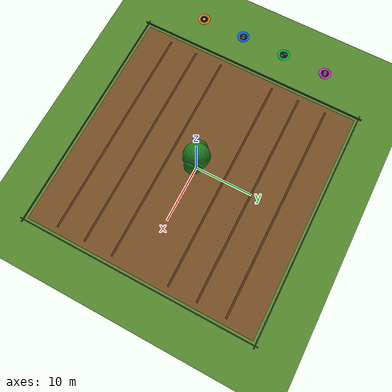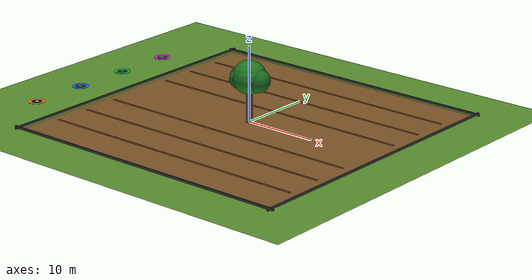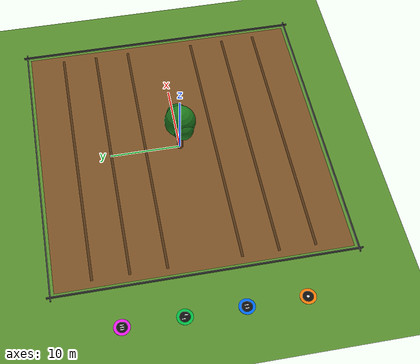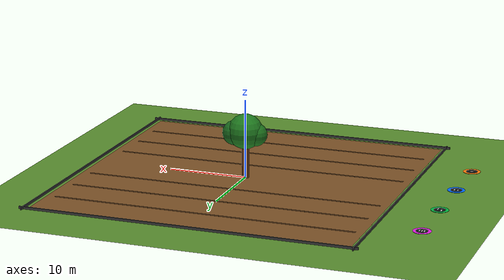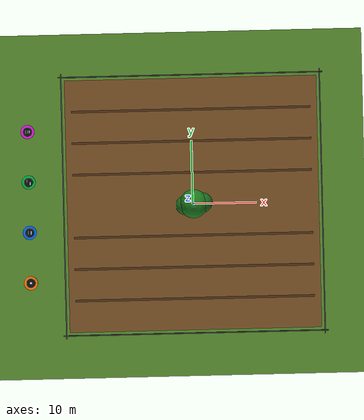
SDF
<?xml version="1.0" encoding="UTF-8"?>
<sdf version="1.9">
  <world name="swarm_field">

    <physics type="ode">
      <max_step_size>0.004</max_step_size>
      <real_time_factor>1.0</real_time_factor>
      <real_time_update_rate>250</real_time_update_rate>
    </physics>
    <gravity>0 0 -9.8</gravity>
    <magnetic_field>6e-06 2.3e-05 -4.2e-05</magnetic_field>
    <atmosphere type="adiabatic"/>

    <scene>
      <sky>
        <clouds>
          <speed>4</speed>
        </clouds>
      </sky>
      <grid>false</grid>
      <ambient>0.62 0.62 0.56 1</ambient>
      <background>0.54 0.78 0.93 1</background>
      <shadows>true</shadows>
    </scene>

    <light name="sun" type="directional">
      <pose>0 0 500 0 0 0</pose>
      <cast_shadows>true</cast_shadows>
      <intensity>1</intensity>
      <direction>-0.45 0.35 -0.82</direction>
      <diffuse>0.95 0.90 0.80 1</diffuse>
      <specular>0.30 0.28 0.24 1</specular>
      <attenuation>
        <range>2000</range>
        <linear>0</linear>
        <constant>1</constant>
        <quadratic>0</quadratic>
      </attenuation>
      <spot>
        <inner_angle>0</inner_angle>
        <outer_angle>0</outer_angle>
        <falloff>0</falloff>
      </spot>
    </light>

    <light name="sky_fill" type="directional">
      <cast_shadows>false</cast_shadows>
      <pose>0 0 100 0 0 0</pose>
      <direction>0 0 -1</direction>
      <diffuse>0.34 0.44 0.54 1</diffuse>
      <specular>0.05 0.05 0.05 1</specular>
      <attenuation>
        <range>2000</range>
        <constant>1</constant>
        <linear>0</linear>
        <quadratic>0</quadratic>
      </attenuation>
    </light>

    <model name="grass_ground">
      <static>true</static>
      <pose>0 0 0 0 0 0</pose>
      <link name="link">
        <collision name="collision">
          <geometry>
            <plane>
              <normal>0 0 1</normal>
              <size>1 1</size>
            </plane>
          </geometry>
          <surface>
            <friction>
              <ode>
                <mu>0.8</mu>
                <mu2>0.8</mu2>
              </ode>
            </friction>
            <contact>
              <collide_bitmask>65535</collide_bitmask>
            </contact>
          </surface>
        </collision>
        <visual name="visual">
          <cast_shadows>false</cast_shadows>
          <geometry>
            <plane>
              <normal>0 0 1</normal>
              <size>300 300</size>
            </plane>
          </geometry>
          <material>
            <ambient>0.24 0.42 0.13 1</ambient>
            <diffuse>0.34 0.55 0.18 1</diffuse>
            <specular>0.02 0.03 0.01 1</specular>
          </material>
        </visual>
      </link>
    </model>

    <model name="field_soil_40x40">
      <static>true</static>
      <pose>0 0 0.006 0 0 0</pose>
      <link name="link">
        <collision name="collision">
          <geometry>
            <box>
              <size>40 40 0.02</size>
            </box>
          </geometry>
          <surface>
            <friction>
              <ode>
                <mu>1.0</mu>
                <mu2>1.0</mu2>
              </ode>
            </friction>
            <contact>
              <collide_bitmask>65535</collide_bitmask>
            </contact>
          </surface>
        </collision>
        <visual name="soil">
          <cast_shadows>false</cast_shadows>
          <pose>0 0 0.011 0 0 0</pose>
          <geometry>
            <box>
              <size>40 40 0.001</size>
            </box>
          </geometry>
          <material>
            <ambient>0.36 0.24 0.11 1</ambient>
            <diffuse>0.48 0.32 0.15 1</diffuse>
            <specular>0.02 0.01 0.01 1</specular>
          </material>
        </visual>
        <visual name="row_0">
          <pose>0 -15 0.014 0 0 0</pose>
          <geometry><box><size>38 0.35 0.001</size></box></geometry>
          <material><ambient>0.24 0.14 0.06 1</ambient><diffuse>0.32 0.20 0.08 1</diffuse></material>
        </visual>
        <visual name="row_1">
          <pose>0 -10 0.014 0 0 0</pose>
          <geometry><box><size>38 0.35 0.001</size></box></geometry>
          <material><ambient>0.24 0.14 0.06 1</ambient><diffuse>0.32 0.20 0.08 1</diffuse></material>
        </visual>
        <visual name="row_2">
          <pose>0 -5 0.014 0 0 0</pose>
          <geometry><box><size>38 0.35 0.001</size></box></geometry>
          <material><ambient>0.24 0.14 0.06 1</ambient><diffuse>0.32 0.20 0.08 1</diffuse></material>
        </visual>
        <visual name="row_3">
          <pose>0 5 0.014 0 0 0</pose>
          <geometry><box><size>38 0.35 0.001</size></box></geometry>
          <material><ambient>0.24 0.14 0.06 1</ambient><diffuse>0.32 0.20 0.08 1</diffuse></material>
        </visual>
        <visual name="row_4">
          <pose>0 10 0.014 0 0 0</pose>
          <geometry><box><size>38 0.35 0.001</size></box></geometry>
          <material><ambient>0.24 0.14 0.06 1</ambient><diffuse>0.32 0.20 0.08 1</diffuse></material>
        </visual>
        <visual name="row_5">
          <pose>0 15 0.014 0 0 0</pose>
          <geometry><box><size>38 0.35 0.001</size></box></geometry>
          <material><ambient>0.24 0.14 0.06 1</ambient><diffuse>0.32 0.20 0.08 1</diffuse></material>
        </visual>
      </link>
    </model>

    <spherical_coordinates>
      <surface_model>EARTH_WGS84</surface_model>
      <world_frame_orientation>ENU</world_frame_orientation>
      <latitude_deg>47.397971057728974</latitude_deg>
      <longitude_deg>8.546163739800146</longitude_deg>
      <elevation>0</elevation>
    </spherical_coordinates>

    <model name="landing_pad_0">
      <static>true</static>
      <pose>-26 -12 0.025 0 0 0</pose>
      <link name="link">
        <collision name="col"><geometry><cylinder><radius>1.1</radius><length>0.03</length></cylinder></geometry></collision>
        <visual name="ring"><geometry><cylinder><radius>1.1</radius><length>0.03</length></cylinder></geometry><material><ambient>0.95 0.35 0.02 1</ambient><diffuse>1.0 0.48 0.03 1</diffuse></material></visual>
        <visual name="inner"><pose>0 0 0.005 0 0 0</pose><geometry><cylinder><radius>0.72</radius><length>0.03</length></cylinder></geometry><material><ambient>0.03 0.03 0.03 1</ambient><diffuse>0.06 0.06 0.06 1</diffuse></material></visual>
        <visual name="mark_0"><pose>0 0 0.025 0 0 0</pose><geometry><cylinder><radius>0.18</radius><length>0.02</length></cylinder></geometry><material><ambient>1 1 1 1</ambient><diffuse>1 1 1 1</diffuse></material></visual>
      </link>
    </model>

    <model name="landing_pad_1">
      <static>true</static>
      <pose>-26 -4 0.025 0 0 0</pose>
      <link name="link">
        <collision name="col"><geometry><cylinder><radius>1.1</radius><length>0.03</length></cylinder></geometry></collision>
        <visual name="ring"><geometry><cylinder><radius>1.1</radius><length>0.03</length></cylinder></geometry><material><ambient>0.0 0.28 0.85 1</ambient><diffuse>0.0 0.42 1.0 1</diffuse></material></visual>
        <visual name="inner"><pose>0 0 0.005 0 0 0</pose><geometry><cylinder><radius>0.72</radius><length>0.03</length></cylinder></geometry><material><ambient>0.03 0.03 0.03 1</ambient><diffuse>0.06 0.06 0.06 1</diffuse></material></visual>
        <visual name="mark_1a"><pose>-0.22 0 0.025 0 0 0</pose><geometry><box><size>0.12 0.5 0.02</size></box></geometry><material><ambient>1 1 1 1</ambient><diffuse>1 1 1 1</diffuse></material></visual>
        <visual name="mark_1b"><pose>0.22 0 0.025 0 0 0</pose><geometry><box><size>0.12 0.5 0.02</size></box></geometry><material><ambient>1 1 1 1</ambient><diffuse>1 1 1 1</diffuse></material></visual>
      </link>
    </model>

    <model name="landing_pad_2">
      <static>true</static>
      <pose>-26 4 0.025 0 0 0</pose>
      <link name="link">
        <collision name="col"><geometry><cylinder><radius>1.1</radius><length>0.03</length></cylinder></geometry></collision>
        <visual name="ring"><geometry><cylinder><radius>1.1</radius><length>0.03</length></cylinder></geometry><material><ambient>0.0 0.55 0.18 1</ambient><diffuse>0.0 0.72 0.25 1</diffuse></material></visual>
        <visual name="inner"><pose>0 0 0.005 0 0 0</pose><geometry><cylinder><radius>0.72</radius><length>0.03</length></cylinder></geometry><material><ambient>0.03 0.03 0.03 1</ambient><diffuse>0.06 0.06 0.06 1</diffuse></material></visual>
        <visual name="mark_2a"><pose>-0.25 0.2 0.025 0 0 0</pose><geometry><box><size>0.12 0.45 0.02</size></box></geometry><material><ambient>1 1 1 1</ambient><diffuse>1 1 1 1</diffuse></material></visual>
        <visual name="mark_2b"><pose>0.25 -0.2 0.025 0 0 0</pose><geometry><box><size>0.12 0.45 0.02</size></box></geometry><material><ambient>1 1 1 1</ambient><diffuse>1 1 1 1</diffuse></material></visual>
      </link>
    </model>

    <model name="landing_pad_3">
      <static>true</static>
      <pose>-26 12 0.025 0 0 0</pose>
      <link name="link">
        <collision name="col"><geometry><cylinder><radius>1.1</radius><length>0.03</length></cylinder></geometry></collision>
        <visual name="ring"><geometry><cylinder><radius>1.1</radius><length>0.03</length></cylinder></geometry><material><ambient>0.72 0.06 0.72 1</ambient><diffuse>0.9 0.1 0.9 1</diffuse></material></visual>
        <visual name="inner"><pose>0 0 0.005 0 0 0</pose><geometry><cylinder><radius>0.72</radius><length>0.03</length></cylinder></geometry><material><ambient>0.03 0.03 0.03 1</ambient><diffuse>0.06 0.06 0.06 1</diffuse></material></visual>
        <visual name="mark_3a"><pose>-0.3 0 0.025 0 0 0</pose><geometry><box><size>0.12 0.5 0.02</size></box></geometry><material><ambient>1 1 1 1</ambient><diffuse>1 1 1 1</diffuse></material></visual>
        <visual name="mark_3b"><pose>0 0 0.025 0 0 0</pose><geometry><box><size>0.12 0.5 0.02</size></box></geometry><material><ambient>1 1 1 1</ambient><diffuse>1 1 1 1</diffuse></material></visual>
        <visual name="mark_3c"><pose>0.3 0 0.025 0 0 0</pose><geometry><box><size>0.12 0.5 0.02</size></box></geometry><material><ambient>1 1 1 1</ambient><diffuse>1 1 1 1</diffuse></material></visual>
      </link>
    </model>

    <model name="tree_obstacle_center">
      <static>true</static>
      <pose>0 0 0 0 0 0</pose>
      <link name="trunk">
        <pose>0 0 3.0 0 0 0</pose>
        <collision name="trunk_col">
          <geometry><cylinder><radius>0.45</radius><length>6.0</length></cylinder></geometry>
          <surface>
            <friction><ode><mu>1.0</mu><mu2>1.0</mu2></ode></friction>
            <contact><collide_bitmask>65535</collide_bitmask></contact>
          </surface>
        </collision>
        <visual name="trunk_vis">
          <geometry><cylinder><radius>0.45</radius><length>6.0</length></cylinder></geometry>
          <material><ambient>0.28 0.13 0.05 1</ambient><diffuse>0.42 0.22 0.08 1</diffuse><specular>0.03 0.02 0.01 1</specular></material>
        </visual>
      </link>
      <link name="canopy">
        <pose>0 0 6.0 0 0 0</pose>
        <collision name="canopy_col">
          <geometry><sphere><radius>2.2</radius></sphere></geometry>
          <surface>
            <friction><ode><mu>1.0</mu><mu2>1.0</mu2></ode></friction>
            <contact><collide_bitmask>65535</collide_bitmask></contact>
          </surface>
        </collision>
        <visual name="canopy_vis">
          <geometry><sphere><radius>2.2</radius></sphere></geometry>
          <material><ambient>0.08 0.32 0.08 1</ambient><diffuse>0.12 0.48 0.12 1</diffuse><specular>0.02 0.04 0.02 1</specular></material>
        </visual>
        <visual name="canopy_lobe_east">
          <pose>1.35 0.15 -0.25 0 0 0</pose>
          <geometry><sphere><radius>1.55</radius></sphere></geometry>
          <material><ambient>0.06 0.28 0.07 1</ambient><diffuse>0.10 0.42 0.12 1</diffuse></material>
        </visual>
        <visual name="canopy_lobe_west">
          <pose>-1.3 -0.2 -0.35 0 0 0</pose>
          <geometry><sphere><radius>1.45</radius></sphere></geometry>
          <material><ambient>0.07 0.30 0.07 1</ambient><diffuse>0.11 0.45 0.11 1</diffuse></material>
        </visual>
      </link>
    </model>

    <model name="field_boundary_north">
      <static>true</static>
      <pose>0 20.5 0.15 0 0 0</pose>
      <link name="link">
        <visual name="visual"><geometry><box><size>42 0.15 0.3</size></box></geometry><material><ambient>0.16 0.16 0.16 1</ambient><diffuse>0.24 0.24 0.24 1</diffuse></material></visual>
      </link>
    </model>
    <model name="field_boundary_south">
      <static>true</static>
      <pose>0 -20.5 0.15 0 0 0</pose>
      <link name="link">
        <visual name="visual"><geometry><box><size>42 0.15 0.3</size></box></geometry><material><ambient>0.16 0.16 0.16 1</ambient><diffuse>0.24 0.24 0.24 1</diffuse></material></visual>
      </link>
    </model>
    <model name="field_boundary_east">
      <static>true</static>
      <pose>20.5 0 0.15 0 0 0</pose>
      <link name="link">
        <visual name="visual"><geometry><box><size>0.15 42 0.3</size></box></geometry><material><ambient>0.16 0.16 0.16 1</ambient><diffuse>0.24 0.24 0.24 1</diffuse></material></visual>
      </link>
    </model>
    <model name="field_boundary_west">
      <static>true</static>
      <pose>-20.5 0 0.15 0 0 0</pose>
      <link name="link">
        <visual name="visual"><geometry><box><size>0.15 42 0.3</size></box></geometry><material><ambient>0.16 0.16 0.16 1</ambient><diffuse>0.24 0.24 0.24 1</diffuse></material></visual>
      </link>
    </model>

  </world>
</sdf>
